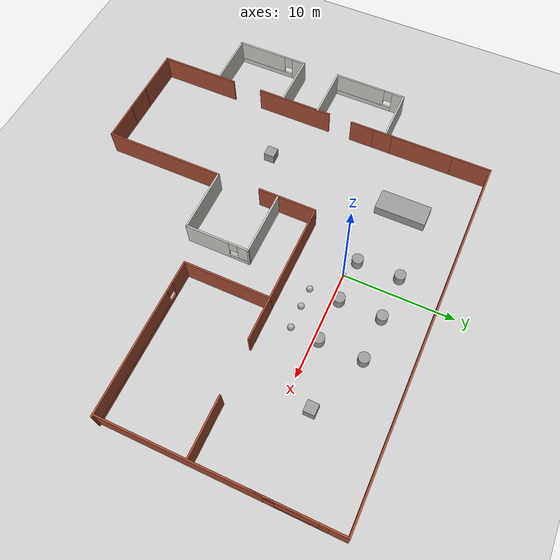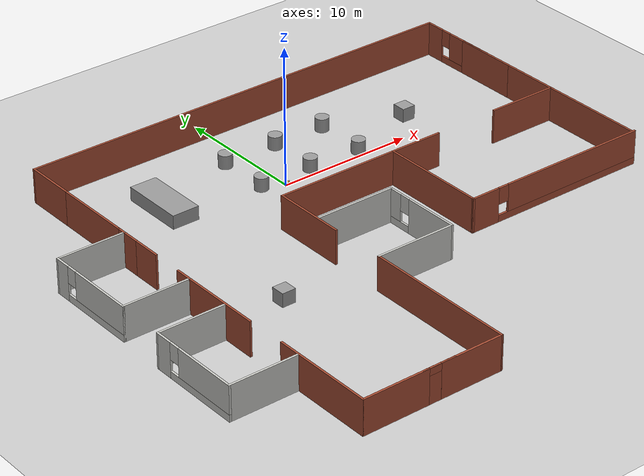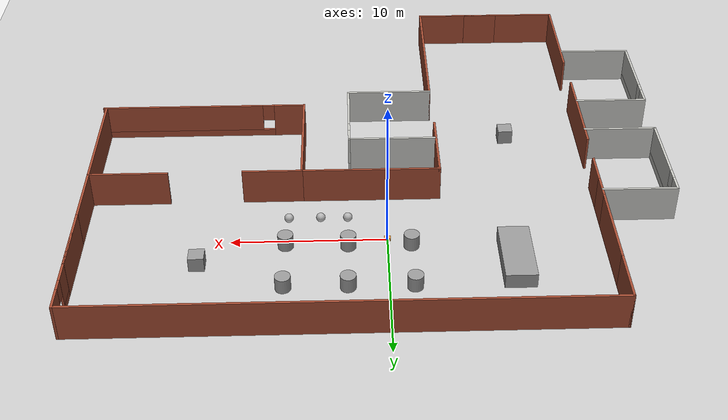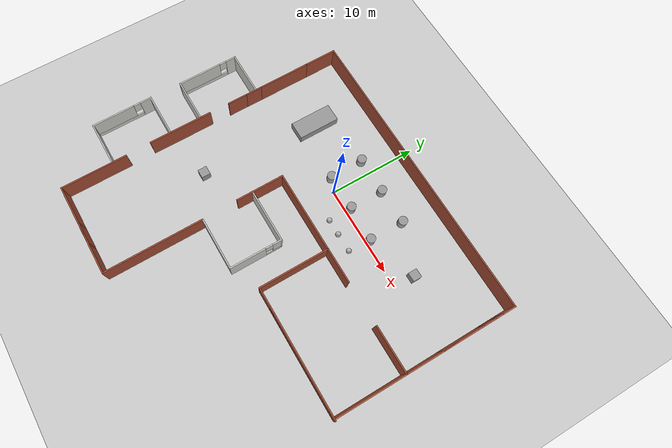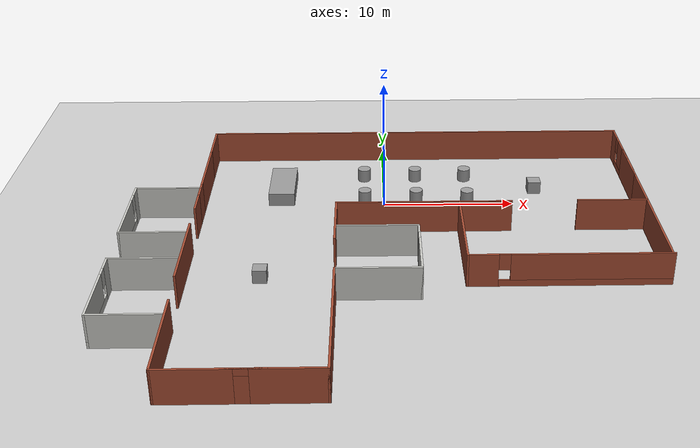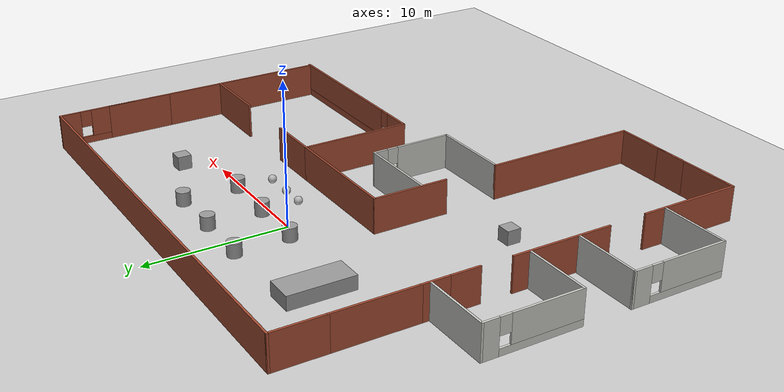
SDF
<sdf version="1.7">
 <world name="default">
  <light name="sun" type="directional">
   <pose>0 0 10 0 -0 0</pose>
   <diffuse>0.8 0.8 0.8 1</diffuse>
   <specular>0.2 0.2 0.2 1</specular>
   <attenuation>
    <range>1000</range>
    <constant>0.9</constant>
    <linear>0.01</linear>
    <quadratic>0.001</quadratic>
   </attenuation>
   <direction>-0.5 0.1 -0.9</direction>
   <spot><inner_angle>0</inner_angle><outer_angle>0</outer_angle><falloff>0</falloff></spot>
  </light>
  <model name="sphere1">
   <pose>6.33704 -2.07922 0.3 -6.2e-05 -8.2e-05 1.57285</pose>
   <link name="link">
    <inertial>
     <mass>1</mass>
     <inertia><ixx>1</ixx><ixy>0</ixy><ixz>0</ixz><iyy>1</iyy><iyz>0</iyz><izz>1</izz></inertia>
    </inertial>
    <collision name="collision"><geometry><sphere><radius>0.3</radius></sphere></geometry></collision>
    <visual name="visual"><geometry><sphere><radius>0.3</radius></sphere></geometry></visual>
   </link>
   <plugin name="move" filename="libgazebo_ros_planar_move.so">
    <ros><namespace>/sphere1</namespace></ros>
   </plugin>
  </model>
  <model name="sphere2">
   <pose>4.26786 -2.09169 0.3 0 -0 1.57935</pose>
   <link name="link">
    <inertial>
     <mass>1</mass>
     <inertia><ixx>1</ixx><ixy>0</ixy><ixz>0</ixz><iyy>1</iyy><iyz>0</iyz><izz>1</izz></inertia>
    </inertial>
    <collision name="collision"><geometry><sphere><radius>0.3</radius></sphere></geometry></collision>
    <visual name="visual"><geometry><sphere><radius>0.3</radius></sphere></geometry></visual>
   </link>
   <plugin name="move" filename="libgazebo_ros_planar_move.so">
    <ros><namespace>/sphere2</namespace></ros>
   </plugin>
  </model>
  <model name="sphere3">
   <pose>2.5092 -2.07272 0.3 -0.002357 -0.003179 1.56544</pose>
   <link name="link">
    <inertial>
     <mass>1</mass>
     <inertia><ixx>1</ixx><ixy>0</ixy><ixz>0</ixz><iyy>1</iyy><iyz>0</iyz><izz>1</izz></inertia>
    </inertial>
    <collision name="collision"><geometry><sphere><radius>0.3</radius></sphere></geometry></collision>
    <visual name="visual"><geometry><sphere><radius>0.3</radius></sphere></geometry></visual>
   </link>
   <plugin name="move" filename="libgazebo_ros_planar_move.so">
    <ros><namespace>/sphere3</namespace></ros>
   </plugin>
  </model>
  <model name="ground_plane">
   <static>1</static>
   <link name="link">
    <collision name="collision">
     <geometry><plane><normal>0 0 1</normal><size>100 100</size></plane></geometry>
     <surface>
      <contact><collide_bitmask>65535</collide_bitmask></contact>
      <friction><ode><mu>100</mu><mu2>50</mu2></ode></friction>
     </surface>
    </collision>
    <visual name="visual">
     <cast_shadows>0</cast_shadows>
     <geometry><plane><normal>0 0 1</normal><size>100 100</size></plane></geometry>
     <material>
      <script><uri>file://media/materials/scripts/gazebo.material</uri><name>Gazebo/Grey</name></script>
     </material>
    </visual>
   </link>
  </model>
  <gravity>0 0 -9.8</gravity>
  <magnetic_field>6e-06 2.3e-05 -4.2e-05</magnetic_field>
  <atmosphere type="adiabatic"/>
  <physics type="ode">
   <max_step_size>0.001</max_step_size>
   <real_time_factor>1</real_time_factor>
   <real_time_update_rate>1000</real_time_update_rate>
  </physics>
  <scene><ambient>0.4 0.4 0.4 1</ambient><background>0.7 0.7 0.7 1</background><shadows>1</shadows></scene>
  <audio><device>default</device></audio>
  <spherical_coordinates>
   <surface_model>EARTH_WGS84</surface_model>
   <latitude_deg>0</latitude_deg>
   <longitude_deg>0</longitude_deg>
   <elevation>0</elevation>
   <heading_deg>0</heading_deg>
  </spherical_coordinates>
  <model name="house">
   <pose>0.3748 -8.23016 0 0 -0 0</pose>
   <link name="Wall_11">
    <collision name="Wall_11_Collision">
     <geometry><box><size>5 0.15 2.5</size></box></geometry>
     <pose>0 0 1.25 0 -0 0</pose>
    </collision>
    <visual name="Wall_11_Visual">
     <pose>0 0 1.25 0 -0 0</pose>
     <geometry><box><size>5 0.15 2.5</size></box></geometry>
     <material>
      <script><uri>file://media/materials/scripts/gazebo.material</uri><name>Gazebo/CeilingTiled</name></script>
      <ambient>0.921569 0.807843 0.615686 1</ambient>
     </material>
     <meta><layer>0</layer></meta>
    </visual>
    <pose>-16.7413 6.52362 0 0 -0 3.14159</pose>
   </link>
   <link name="Wall_12">
    <pose>-19.1663 3.09862 0 0 -0 -1.5708</pose>
    <visual name="Wall_12_Visual_0">
     <pose>-2.89413 0 1.25 0 -0 0</pose>
     <geometry><box><size>1.21173 0.15 2.5</size></box></geometry>
     <material>
      <script><uri>file://media/materials/scripts/gazebo.material</uri><name>Gazebo/CeilingTiled</name></script>
      <ambient>0.921569 0.807843 0.615686 1</ambient>
     </material>
     <meta><layer>0</layer></meta>
    </visual>
    <collision name="Wall_12_Collision_0">
     <geometry><box><size>1.21173 0.15 2.5</size></box></geometry>
     <pose>-2.89413 0 1.25 0 -0 0</pose>
    </collision>
    <visual name="Wall_12_Visual_1">
     <pose>0.605867 0 0.25 0 -0 0</pose>
     <geometry><box><size>5.78827 0.15 0.5</size></box></geometry>
     <material>
      <script><uri>file://media/materials/scripts/gazebo.material</uri><name>Gazebo/CeilingTiled</name></script>
      <ambient>0.921569 0.807843 0.615686 1</ambient>
     </material>
     <meta><layer>0</layer></meta>
    </visual>
    <collision name="Wall_12_Collision_1">
     <geometry><box><size>5.78827 0.15 0.5</size></box></geometry>
     <pose>0.605867 0 0.25 0 -0 0</pose>
    </collision>
    <visual name="Wall_12_Visual_2">
     <pose>1.00587 0 1.5 0 -0 0</pose>
     <geometry><box><size>4.98827 0.15 2</size></box></geometry>
     <material>
      <script><uri>file://media/materials/scripts/gazebo.material</uri><name>Gazebo/CeilingTiled</name></script>
      <ambient>0.921569 0.807843 0.615686 1</ambient>
     </material>
     <meta><layer>0</layer></meta>
    </visual>
    <collision name="Wall_12_Collision_2">
     <geometry><box><size>4.98827 0.15 2</size></box></geometry>
     <pose>1.00587 0 1.5 0 -0 0</pose>
    </collision>
    <visual name="Wall_12_Visual_3">
     <pose>-1.88827 0 1.9 0 -0 0</pose>
     <geometry><box><size>0.8 0.15 1.2</size></box></geometry>
     <material>
      <script><uri>file://media/materials/scripts/gazebo.material</uri><name>Gazebo/CeilingTiled</name></script>
      <ambient>0.921569 0.807843 0.615686 1</ambient>
     </material>
     <meta><layer>0</layer></meta>
    </visual>
    <collision name="Wall_12_Collision_3">
     <geometry><box><size>0.8 0.15 1.2</size></box></geometry>
     <pose>-1.88827 0 1.9 0 -0 0</pose>
    </collision>
   </link>
   <link name="Wall_13">
    <collision name="Wall_13_Collision">
     <geometry><box><size>5 0.15 2.5</size></box></geometry>
     <pose>0 0 1.25 0 -0 0</pose>
    </collision>
    <visual name="Wall_13_Visual">
     <pose>0 0 1.25 0 -0 0</pose>
     <geometry><box><size>5 0.15 2.5</size></box></geometry>
     <material>
      <script><uri>file://media/materials/scripts/gazebo.material</uri><name>Gazebo/CeilingTiled</name></script>
      <ambient>0.921569 0.807843 0.615686 1</ambient>
     </material>
     <meta><layer>0</layer></meta>
    </visual>
    <pose>-16.7413 -0.326379 0 0 -0 0</pose>
   </link>
   <link name="Wall_15">
    <collision name="Wall_15_Collision">
     <geometry><box><size>2.25 0.15 2.5</size></box></geometry>
     <pose>0 0 1.25 0 -0 0</pose>
    </collision>
    <visual name="Wall_15_Visual">
     <pose>0 0 1.25 0 -0 0</pose>
     <geometry><box><size>2.25 0.15 2.5</size></box></geometry>
     <material>
      <script><uri>file://media/materials/scripts/gazebo.material</uri><name>Gazebo/Bricks</name></script>
      <ambient>1 1 1 1</ambient>
     </material>
     <meta><layer>0</layer></meta>
    </visual>
    <pose>-14.2878 4.2199 0 0 -0 -1.5708</pose>
   </link>
   <link name="Wall_17">
    <collision name="Wall_17_Collision">
     <geometry><box><size>7.25 0.15 2.5</size></box></geometry>
     <pose>0 0 1.25 0 -0 0</pose>
    </collision>
    <visual name="Wall_17_Visual">
     <pose>0 0 1.25 0 -0 0</pose>
     <geometry><box><size>7.25 0.15 2.5</size></box></geometry>
     <material>
      <script><uri>file://media/materials/scripts/gazebo.material</uri><name>Gazebo/Bricks</name></script>
      <ambient>1 1 1 1</ambient>
     </material>
     <meta><layer>0</layer></meta>
    </visual>
    <pose>-14.3152 -2.72703 0 0 -0 -1.5708</pose>
   </link>
   <link name="Wall_19">
    <collision name="Wall_19_Collision">
     <geometry><box><size>5 0.15 2.5</size></box></geometry>
     <pose>0 0 1.25 0 -0 0</pose>
    </collision>
    <visual name="Wall_19_Visual">
     <pose>0 0 1.25 0 -0 0</pose>
     <geometry><box><size>5 0.15 2.5</size></box></geometry>
     <material>
      <script><uri>file://media/materials/scripts/gazebo.material</uri><name>Gazebo/CeilingTiled</name></script>
      <ambient>0.921569 0.807843 0.615686 1</ambient>
     </material>
     <meta><layer>0</layer></meta>
    </visual>
    <pose>-16.7931 -3.92962 0 0 -0 3.14159</pose>
   </link>
   <link name="Wall_21">
    <pose>-19.2181 -7.35462 0 0 -0 -1.5708</pose>
    <visual name="Wall_21_Visual_0">
     <pose>-2.82936 0 1.25 0 -0 0</pose>
     <geometry><box><size>1.34129 0.15 2.5</size></box></geometry>
     <material>
      <script><uri>file://media/materials/scripts/gazebo.material</uri><name>Gazebo/CeilingTiled</name></script>
      <ambient>0.921569 0.807843 0.615686 1</ambient>
     </material>
     <meta><layer>0</layer></meta>
    </visual>
    <collision name="Wall_21_Collision_0">
     <geometry><box><size>1.34129 0.15 2.5</size></box></geometry>
     <pose>-2.82936 0 1.25 0 -0 0</pose>
    </collision>
    <visual name="Wall_21_Visual_1">
     <pose>0.670644 0 0.25 0 -0 0</pose>
     <geometry><box><size>5.65871 0.15 0.5</size></box></geometry>
     <material>
      <script><uri>file://media/materials/scripts/gazebo.material</uri><name>Gazebo/CeilingTiled</name></script>
      <ambient>0.921569 0.807843 0.615686 1</ambient>
     </material>
     <meta><layer>0</layer></meta>
    </visual>
    <collision name="Wall_21_Collision_1">
     <geometry><box><size>5.65871 0.15 0.5</size></box></geometry>
     <pose>0.670644 0 0.25 0 -0 0</pose>
    </collision>
    <visual name="Wall_21_Visual_2">
     <pose>1.07064 0 1.5 0 -0 0</pose>
     <geometry><box><size>4.85871 0.15 2</size></box></geometry>
     <material>
      <script><uri>file://media/materials/scripts/gazebo.material</uri><name>Gazebo/CeilingTiled</name></script>
      <ambient>0.921569 0.807843 0.615686 1</ambient>
     </material>
     <meta><layer>0</layer></meta>
    </visual>
    <collision name="Wall_21_Collision_2">
     <geometry><box><size>4.85871 0.15 2</size></box></geometry>
     <pose>1.07064 0 1.5 0 -0 0</pose>
    </collision>
    <visual name="Wall_21_Visual_3">
     <pose>-1.75871 0 1.9 0 -0 0</pose>
     <geometry><box><size>0.8 0.15 1.2</size></box></geometry>
     <material>
      <script><uri>file://media/materials/scripts/gazebo.material</uri><name>Gazebo/CeilingTiled</name></script>
      <ambient>0.921569 0.807843 0.615686 1</ambient>
     </material>
     <meta><layer>0</layer></meta>
    </visual>
    <collision name="Wall_21_Collision_3">
     <geometry><box><size>0.8 0.15 1.2</size></box></geometry>
     <pose>-1.75871 0 1.9 0 -0 0</pose>
    </collision>
   </link>
   <link name="Wall_22">
    <collision name="Wall_22_Collision">
     <geometry><box><size>5 0.15 2.5</size></box></geometry>
     <pose>0 0 1.25 0 -0 0</pose>
    </collision>
    <visual name="Wall_22_Visual">
     <pose>0 0 1.25 0 -0 0</pose>
     <geometry><box><size>5 0.15 2.5</size></box></geometry>
     <material>
      <script><uri>file://media/materials/scripts/gazebo.material</uri><name>Gazebo/CeilingTiled</name></script>
      <ambient>0.921569 0.807843 0.615686 1</ambient>
     </material>
     <meta><layer>0</layer></meta>
    </visual>
    <pose>-16.7931 -10.7796 0 0 -0 0</pose>
   </link>
   <link name="Wall_24">
    <collision name="Wall_24_Collision">
     <geometry><box><size>7.5 0.15 2.5</size></box></geometry>
     <pose>0 0 1.25 0 -0 0</pose>
    </collision>
    <visual name="Wall_24_Visual">
     <pose>0 0 1.25 0 -0 0</pose>
     <geometry><box><size>7.5 0.15 2.5</size></box></geometry>
     <material>
      <script><uri>file://media/materials/scripts/gazebo.material</uri><name>Gazebo/Bricks</name></script>
      <ambient>1 1 1 1</ambient>
     </material>
     <meta><layer>0</layer></meta>
    </visual>
    <pose>-14.2382 -12.8949 0 0 -0 -1.5708</pose>
   </link>
   <link name="Wall_25">
    <pose>-9.06316 -16.5699 0 0 -0 0</pose>
    <visual name="Wall_25_Visual_0">
     <pose>-2.80375 0 1.25 0 -0 0</pose>
     <geometry><box><size>4.89251 0.15 2.5</size></box></geometry>
     <material>
      <script><uri>file://media/materials/scripts/gazebo.material</uri><name>Gazebo/Bricks</name></script>
      <ambient>1 1 1 1</ambient>
     </material>
     <meta><layer>0</layer></meta>
    </visual>
    <collision name="Wall_25_Collision_0">
     <geometry><box><size>4.89251 0.15 2.5</size></box></geometry>
     <pose>-2.80375 0 1.25 0 -0 0</pose>
    </collision>
    <visual name="Wall_25_Visual_1">
     <pose>2.89625 0 1.25 0 -0 0</pose>
     <geometry><box><size>4.70749 0.15 2.5</size></box></geometry>
     <material>
      <script><uri>file://media/materials/scripts/gazebo.material</uri><name>Gazebo/Bricks</name></script>
      <ambient>1 1 1 1</ambient>
     </material>
     <meta><layer>0</layer></meta>
    </visual>
    <collision name="Wall_25_Collision_1">
     <geometry><box><size>4.70749 0.15 2.5</size></box></geometry>
     <pose>2.89625 0 1.25 0 -0 0</pose>
    </collision>
    <visual name="Wall_25_Visual_2">
     <pose>0.092508 0 2.25 0 -0 0</pose>
     <geometry><box><size>0.9 0.15 0.5</size></box></geometry>
     <material>
      <script><uri>file://media/materials/scripts/gazebo.material</uri><name>Gazebo/Bricks</name></script>
      <ambient>1 1 1 1</ambient>
     </material>
     <meta><layer>0</layer></meta>
    </visual>
    <collision name="Wall_25_Collision_2">
     <geometry><box><size>0.9 0.15 0.5</size></box></geometry>
     <pose>0.092508 0 2.25 0 -0 0</pose>
    </collision>
   </link>
   <link name="Wall_26">
    <collision name="Wall_26_Collision">
     <geometry><box><size>11.25 0.15 2.5</size></box></geometry>
     <pose>0 0 1.25 0 -0 0</pose>
    </collision>
    <visual name="Wall_26_Visual">
     <pose>0 0 1.25 0 -0 0</pose>
     <geometry><box><size>11.25 0.15 2.5</size></box></geometry>
     <material>
      <script><uri>file://media/materials/scripts/gazebo.material</uri><name>Gazebo/Bricks</name></script>
      <ambient>1 1 1 1</ambient>
     </material>
     <meta><layer>0</layer></meta>
    </visual>
    <pose>-3.88816 -11.0199 0 0 -0 1.5708</pose>
   </link>
   <link name="Wall_27">
    <collision name="Wall_27_Collision">
     <geometry><box><size>6 0.15 2.5</size></box></geometry>
     <pose>0 0 1.25 0 -0 0</pose>
    </collision>
    <visual name="Wall_27_Visual">
     <pose>0 0 1.25 0 -0 0</pose>
     <geometry><box><size>6 0.15 2.5</size></box></geometry>
     <material>
      <script><uri>file://media/materials/scripts/gazebo.material</uri><name>Gazebo/CeilingTiled</name></script>
      <ambient>0.921569 0.807843 0.615686 1</ambient>
     </material>
     <meta><layer>0</layer></meta>
    </visual>
    <pose>-0.963163 -5.4699 0 0 -0 0</pose>
   </link>
   <link name="Wall_28">
    <pose>1.96184 -2.5449 0 0 -0 1.5708</pose>
    <visual name="Wall_28_Visual_0">
     <pose>-0.948972 0 1.25 0 -0 0</pose>
     <geometry><box><size>4.10206 0.15 2.5</size></box></geometry>
     <material>
      <script><uri>file://media/materials/scripts/gazebo.material</uri><name>Gazebo/CeilingTiled</name></script>
      <ambient>0.921569 0.807843 0.615686 1</ambient>
     </material>
     <meta><layer>0</layer></meta>
    </visual>
    <collision name="Wall_28_Collision_0">
     <geometry><box><size>4.10206 0.15 2.5</size></box></geometry>
     <pose>-0.948972 0 1.25 0 -0 0</pose>
    </collision>
    <visual name="Wall_28_Visual_1">
     <pose>2.05103 0 0.25 0 -0 0</pose>
     <geometry><box><size>1.89794 0.15 0.5</size></box></geometry>
     <material>
      <script><uri>file://media/materials/scripts/gazebo.material</uri><name>Gazebo/CeilingTiled</name></script>
      <ambient>0.921569 0.807843 0.615686 1</ambient>
     </material>
     <meta><layer>0</layer></meta>
    </visual>
    <collision name="Wall_28_Collision_1">
     <geometry><box><size>1.89794 0.15 0.5</size></box></geometry>
     <pose>2.05103 0 0.25 0 -0 0</pose>
    </collision>
    <visual name="Wall_28_Visual_2">
     <pose>2.45103 0 1.5 0 -0 0</pose>
     <geometry><box><size>1.09794 0.15 2</size></box></geometry>
     <material>
      <script><uri>file://media/materials/scripts/gazebo.material</uri><name>Gazebo/CeilingTiled</name></script>
      <ambient>0.921569 0.807843 0.615686 1</ambient>
     </material>
     <meta><layer>0</layer></meta>
    </visual>
    <collision name="Wall_28_Collision_2">
     <geometry><box><size>1.09794 0.15 2</size></box></geometry>
     <pose>2.45103 0 1.5 0 -0 0</pose>
    </collision>
    <visual name="Wall_28_Visual_3">
     <pose>1.50206 0 1.9 0 -0 0</pose>
     <geometry><box><size>0.8 0.15 1.2</size></box></geometry>
     <material>
      <script><uri>file://media/materials/scripts/gazebo.material</uri><name>Gazebo/CeilingTiled</name></script>
      <ambient>0.921569 0.807843 0.615686 1</ambient>
     </material>
     <meta><layer>0</layer></meta>
    </visual>
    <collision name="Wall_28_Collision_3">
     <geometry><box><size>0.8 0.15 1.2</size></box></geometry>
     <pose>1.50206 0 1.9 0 -0 0</pose>
    </collision>
   </link>
   <link name="Wall_29">
    <collision name="Wall_29_Collision">
     <geometry><box><size>6 0.15 2.5</size></box></geometry>
     <pose>0 0 1.25 0 -0 0</pose>
    </collision>
    <visual name="Wall_29_Visual">
     <pose>0 0 1.25 0 -0 0</pose>
     <geometry><box><size>6 0.15 2.5</size></box></geometry>
     <material>
      <script><uri>file://media/materials/scripts/gazebo.material</uri><name>Gazebo/CeilingTiled</name></script>
      <ambient>0.921569 0.807843 0.615686 1</ambient>
     </material>
     <meta><layer>0</layer></meta>
    </visual>
    <pose>-0.963163 0.380099 0 0 -0 3.14159</pose>
   </link>
   <link name="Wall_31">
    <collision name="Wall_31_Collision">
     <geometry><box><size>5.5 0.15 2.5</size></box></geometry>
     <pose>0 0 1.25 0 -0 0</pose>
    </collision>
    <visual name="Wall_31_Visual">
     <pose>0 0 1.25 0 -0 0</pose>
     <geometry><box><size>5.5 0.15 2.5</size></box></geometry>
     <material>
      <script><uri>file://media/materials/scripts/gazebo.material</uri><name>Gazebo/Bricks</name></script>
      <ambient>1 1 1 1</ambient>
     </material>
     <meta><layer>0</layer></meta>
    </visual>
    <pose>-3.98189 1.25425 0 0 -0 1.5708</pose>
   </link>
   <link name="Wall_45">
    <collision name="Wall_45_Collision">
     <geometry><box><size>3.75 0.15 2.5</size></box></geometry>
     <pose>0 0 1.25 0 -0 0</pose>
    </collision>
    <visual name="Wall_45_Visual">
     <pose>0 0 1.25 0 -0 0</pose>
     <geometry><box><size>3.75 0.15 2.5</size></box></geometry>
     <material>
      <script><uri>file://media/materials/scripts/gazebo.material</uri><name>Gazebo/Bricks</name></script>
      <ambient>1 1 1 1</ambient>
     </material>
     <meta><layer>0</layer></meta>
    </visual>
    <pose>-14.2878 14.7699 0 0 -0 1.5708</pose>
   </link>
   <link name="Wall_54">
    <collision name="Wall_54_Collision">
     <geometry><box><size>33.5 0.15 2.5</size></box></geometry>
     <pose>0 0 1.25 0 -0 0</pose>
    </collision>
    <visual name="Wall_54_Visual">
     <pose>0 0 1.25 0 -0 0</pose>
     <geometry><box><size>33.5 0.15 2.5</size></box></geometry>
     <material>
      <script><uri>file://media/materials/scripts/gazebo.material</uri><name>Gazebo/Bricks</name></script>
      <ambient>1 1 1 1</ambient>
     </material>
     <meta><layer>0</layer></meta>
    </visual>
    <pose>2.38719 16.5699 0 0 -0 0</pose>
   </link>
   <link name="Wall_55">
    <pose>19.0622 6.3949 0 0 -0 -1.5708</pose>
    <visual name="Wall_55_Visual_0">
     <pose>-9.4817 0 1.25 0 -0 0</pose>
     <geometry><box><size>1.53661 0.15 2.5</size></box></geometry>
     <material>
      <script><uri>file://media/materials/scripts/gazebo.material</uri><name>Gazebo/Bricks</name></script>
      <ambient>1 1 1 1</ambient>
     </material>
     <meta><layer>0</layer></meta>
    </visual>
    <collision name="Wall_55_Collision_0">
     <geometry><box><size>1.53661 0.15 2.5</size></box></geometry>
     <pose>-9.4817 0 1.25 0 -0 0</pose>
    </collision>
    <visual name="Wall_55_Visual_1">
     <pose>3.34307 0 1.25 0 -0 0</pose>
     <geometry><box><size>13.8139 0.15 2.5</size></box></geometry>
     <material>
      <script><uri>file://media/materials/scripts/gazebo.material</uri><name>Gazebo/Bricks</name></script>
      <ambient>1 1 1 1</ambient>
     </material>
     <meta><layer>0</layer></meta>
    </visual>
    <collision name="Wall_55_Collision_1">
     <geometry><box><size>13.8139 0.15 2.5</size></box></geometry>
     <pose>3.34307 0 1.25 0 -0 0</pose>
    </collision>
    <visual name="Wall_55_Visual_2">
     <pose>-6.58863 0 0.25 0 -0 0</pose>
     <geometry><box><size>4.24953 0.15 0.5</size></box></geometry>
     <material>
      <script><uri>file://media/materials/scripts/gazebo.material</uri><name>Gazebo/Bricks</name></script>
      <ambient>1 1 1 1</ambient>
     </material>
     <meta><layer>0</layer></meta>
    </visual>
    <collision name="Wall_55_Collision_2">
     <geometry><box><size>4.24953 0.15 0.5</size></box></geometry>
     <pose>-6.58863 0 0.25 0 -0 0</pose>
    </collision>
    <visual name="Wall_55_Visual_3">
     <pose>-6.18863 0 1.5 0 -0 0</pose>
     <geometry><box><size>3.44953 0.15 2</size></box></geometry>
     <material>
      <script><uri>file://media/materials/scripts/gazebo.material</uri><name>Gazebo/Bricks</name></script>
      <ambient>1 1 1 1</ambient>
     </material>
     <meta><layer>0</layer></meta>
    </visual>
    <collision name="Wall_55_Collision_3">
     <geometry><box><size>3.44953 0.15 2</size></box></geometry>
     <pose>-6.18863 0 1.5 0 -0 0</pose>
    </collision>
    <visual name="Wall_55_Visual_4">
     <pose>-8.31339 0 1.9 0 -0 0</pose>
     <geometry><box><size>0.8 0.15 1.2</size></box></geometry>
     <material>
      <script><uri>file://media/materials/scripts/gazebo.material</uri><name>Gazebo/Bricks</name></script>
      <ambient>1 1 1 1</ambient>
     </material>
     <meta><layer>0</layer></meta>
    </visual>
    <collision name="Wall_55_Collision_4">
     <geometry><box><size>0.8 0.15 1.2</size></box></geometry>
     <pose>-8.31339 0 1.9 0 -0 0</pose>
    </collision>
    <visual name="Wall_55_Visual_5">
     <pose>-4.01386 0 2.25 0 -0 0</pose>
     <geometry><box><size>0.9 0.15 0.5</size></box></geometry>
     <material>
      <script><uri>file://media/materials/scripts/gazebo.material</uri><name>Gazebo/Bricks</name></script>
      <ambient>1 1 1 1</ambient>
     </material>
     <meta><layer>0</layer></meta>
    </visual>
    <collision name="Wall_55_Collision_5">
     <geometry><box><size>0.9 0.15 0.5</size></box></geometry>
     <pose>-4.01386 0 2.25 0 -0 0</pose>
    </collision>
   </link>
   <link name="Wall_57">
    <collision name="Wall_57_Collision">
     <geometry><box><size>9.25 0.15 2.5</size></box></geometry>
     <pose>0 0 1.25 0 -0 0</pose>
    </collision>
    <visual name="Wall_57_Visual">
     <pose>0 0 1.25 0 -0 0</pose>
     <geometry><box><size>9.25 0.15 2.5</size></box></geometry>
     <material>
      <script><uri>file://media/materials/scripts/gazebo.material</uri><name>Gazebo/Bricks</name></script>
      <ambient>1 1 1 1</ambient>
     </material>
     <meta><layer>0</layer></meta>
    </visual>
    <pose>0.56811 3.92925 0 0 -0 0</pose>
   </link>
   <link name="Wall_60">
    <collision name="Wall_60_Collision">
     <geometry><box><size>8 0.15 2.5</size></box></geometry>
     <pose>0 0 1.25 0 -0 0</pose>
    </collision>
    <visual name="Wall_60_Visual">
     <pose>0 0 1.25 0 -0 0</pose>
     <geometry><box><size>8 0.15 2.5</size></box></geometry>
     <material>
      <script><uri>file://media/materials/scripts/gazebo.material</uri><name>Gazebo/Bricks</name></script>
      <ambient>1 1 1 1</ambient>
     </material>
     <meta><layer>0</layer></meta>
    </visual>
    <pose>5.11811 0.004247 0 0 -0 -1.5708</pose>
   </link>
   <link name="Wall_61">
    <pose>12.1681 -3.92075 0 0 -0 0</pose>
    <visual name="Wall_61_Visual_0">
     <pose>-6.02562 0 1.25 0 -0 0</pose>
     <geometry><box><size>2.19876 0.15 2.5</size></box></geometry>
     <material>
      <script><uri>file://media/materials/scripts/gazebo.material</uri><name>Gazebo/Bricks</name></script>
      <ambient>1 1 1 1</ambient>
     </material>
     <meta><layer>0</layer></meta>
    </visual>
    <collision name="Wall_61_Collision_0">
     <geometry><box><size>2.19876 0.15 2.5</size></box></geometry>
     <pose>-6.02562 0 1.25 0 -0 0</pose>
    </collision>
    <visual name="Wall_61_Visual_1">
     <pose>1.09938 0 0.25 0 -0 0</pose>
     <geometry><box><size>12.0512 0.15 0.5</size></box></geometry>
     <material>
      <script><uri>file://media/materials/scripts/gazebo.material</uri><name>Gazebo/Bricks</name></script>
      <ambient>1 1 1 1</ambient>
     </material>
     <meta><layer>0</layer></meta>
    </visual>
    <collision name="Wall_61_Collision_1">
     <geometry><box><size>12.0512 0.15 0.5</size></box></geometry>
     <pose>1.09938 0 0.25 0 -0 0</pose>
    </collision>
    <visual name="Wall_61_Visual_2">
     <pose>1.49938 0 1.5 0 -0 0</pose>
     <geometry><box><size>11.2512 0.15 2</size></box></geometry>
     <material>
      <script><uri>file://media/materials/scripts/gazebo.material</uri><name>Gazebo/Bricks</name></script>
      <ambient>1 1 1 1</ambient>
     </material>
     <meta><layer>0</layer></meta>
    </visual>
    <collision name="Wall_61_Collision_2">
     <geometry><box><size>11.2512 0.15 2</size></box></geometry>
     <pose>1.49938 0 1.5 0 -0 0</pose>
    </collision>
    <visual name="Wall_61_Visual_3">
     <pose>-4.52624 0 1.9 0 -0 0</pose>
     <geometry><box><size>0.8 0.15 1.2</size></box></geometry>
     <material>
      <script><uri>file://media/materials/scripts/gazebo.material</uri><name>Gazebo/Bricks</name></script>
      <ambient>1 1 1 1</ambient>
     </material>
     <meta><layer>0</layer></meta>
    </visual>
    <collision name="Wall_61_Collision_3">
     <geometry><box><size>0.8 0.15 1.2</size></box></geometry>
     <pose>-4.52624 0 1.9 0 -0 0</pose>
    </collision>
   </link>
   <link name="Wall_63">
    <collision name="Wall_63_Collision">
     <geometry><box><size>4 0.15 2.5</size></box></geometry>
     <pose>0 0 1.25 0 -0 0</pose>
    </collision>
    <visual name="Wall_63_Visual">
     <pose>0 0 1.25 0 -0 0</pose>
     <geometry><box><size>4 0.15 2.5</size></box></geometry>
     <material>
      <script><uri>file://media/materials/scripts/gazebo.material</uri><name>Gazebo/Bricks</name></script>
      <ambient>1 1 1 1</ambient>
     </material>
     <meta><layer>0</layer></meta>
    </visual>
    <pose>7.04311 3.92925 0 0 -0 0</pose>
   </link>
   <link name="Wall_65">
    <collision name="Wall_65_Collision">
     <geometry><box><size>5.25 0.15 2.5</size></box></geometry>
     <pose>0 0 1.25 0 -0 0</pose>
    </collision>
    <visual name="Wall_65_Visual">
     <pose>0 0 1.25 0 -0 0</pose>
     <geometry><box><size>5.25 0.15 2.5</size></box></geometry>
     <material>
      <script><uri>file://media/materials/scripts/gazebo.material</uri><name>Gazebo/Bricks</name></script>
      <ambient>1 1 1 1</ambient>
     </material>
     <meta><layer>0</layer></meta>
    </visual>
    <pose>16.4878 3.97444 0 0 -0 0</pose>
   </link>
   <link name="Wall_8">
    <collision name="Wall_8_Collision">
     <geometry><box><size>6 0.15 2.5</size></box></geometry>
     <pose>0 0 1.25 0 -0 0</pose>
    </collision>
    <visual name="Wall_8_Visual">
     <pose>0 0 1.25 0 -0 0</pose>
     <geometry><box><size>6 0.15 2.5</size></box></geometry>
     <material>
      <script><uri>file://media/materials/scripts/gazebo.material</uri><name>Gazebo/Bricks</name></script>
      <ambient>1 1 1 1</ambient>
     </material>
     <meta><layer>0</layer></meta>
    </visual>
    <pose>-14.2878 10.0449 0 0 -0 -1.5708</pose>
   </link>
   <link name="Wall_9">
    <collision name="Wall_9_Collision">
     <geometry><box><size>2 0.15 2.5</size></box></geometry>
     <pose>0 0 1.25 0 -0 0</pose>
    </collision>
    <visual name="Wall_9_Visual">
     <pose>0 0 1.25 0 -0 0</pose>
     <geometry><box><size>2 0.15 2.5</size></box></geometry>
     <material>
      <script><uri>file://media/materials/scripts/gazebo.material</uri><name>Gazebo/Bricks</name></script>
      <ambient>1 1 1 1</ambient>
     </material>
     <meta><layer>0</layer></meta>
    </visual>
    <pose>-14.2878 6.1949 0 0 -0 -1.5708</pose>
   </link>
   <static>1</static>
  </model>
  <model name="house_0">
   <pose>4.9984 -10.0878 0 0 -0 0</pose>
   <link name="Wall_71">
    <collision name="Wall_71_Collision">
     <geometry><box><size>4.75 0.15 2.5</size></box></geometry>
     <pose>0 0 1.25 0 -0 0</pose>
    </collision>
    <visual name="Wall_71_Visual">
     <pose>0 0 1.25 0 -0 0</pose>
     <geometry><box><size>4.75 0.15 2.5</size></box></geometry>
     <material>
      <script><uri>file://media/materials/scripts/gazebo.material</uri><name>Gazebo/Bricks</name></script>
      <ambient>1 1 1 1</ambient>
     </material>
     <meta><layer>0</layer></meta>
    </visual>
    <pose>14.4369 12.4091 0 0 -0 -1.5708</pose>
   </link>
   <link name="Wall_74">
    <collision name="Wall_74_Collision">
     <geometry><box><size>2.5 0.15 2.5</size></box></geometry>
     <pose>0 0 1.25 0 -0 0</pose>
    </collision>
    <visual name="Wall_74_Visual">
     <pose>0 0 1.25 0 -0 0</pose>
     <geometry><box><size>2.5 0.15 2.5</size></box></geometry>
     <material>
      <script><uri>file://media/materials/scripts/gazebo.material</uri><name>Gazebo/Bricks</name></script>
      <ambient>1 1 1 1</ambient>
     </material>
     <meta><layer>0</layer></meta>
    </visual>
    <pose>-13.2619 -14.7091 0 0 -0 0</pose>
   </link>
   <static>1</static>
  </model>
  <model name="unit_box_clone_0">
   <pose>11.9327 2.19685 0.499995 1e-05 -0 0</pose>
   <link name="link">
    <inertial>
     <mass>1</mass>
     <inertia>
      <ixx>0.166667</ixx>
      <ixy>0</ixy>
      <ixz>0</ixz>
      <iyy>0.166667</iyy>
      <iyz>0</iyz>
      <izz>0.166667</izz>
     </inertia>
    </inertial>
    <collision name="collision"><geometry><box><size>0.999997 1 1</size></box></geometry></collision>
    <visual name="visual">
     <geometry><box><size>0.999997 1 1</size></box></geometry>
     <material>
      <script><name>Gazebo/Grey</name><uri>file://media/materials/scripts/gazebo.material</uri></script>
     </material>
    </visual>
   </link>
  </model>
  <model name="unit_cylinder">
   <pose>6.52313 4.40664 0.499998 3e-06 -3e-06 0</pose>
   <link name="link">
    <inertial>
     <mass>1</mass>
     <inertia><ixx>0.145833</ixx><ixy>0</ixy><ixz>0</ixz><iyy>0.145833</iyy><iyz>0</iyz><izz>0.125</izz></inertia>
    </inertial>
    <collision name="collision">
     <geometry><cylinder><radius>0.5</radius><length>1</length></cylinder></geometry>
    </collision>
    <visual name="visual">
     <geometry><cylinder><radius>0.5</radius><length>1</length></cylinder></geometry>
     <material>
      <script><name>Gazebo/Grey</name><uri>file://media/materials/scripts/gazebo.material</uri></script>
     </material>
    </visual>
   </link>
  </model>
  <model name="unit_cylinder_clone_0">
   <pose>2.53887 4.43589 0.5 0 -0 0</pose>
   <link name="link">
    <inertial>
     <mass>1</mass>
     <inertia><ixx>0.145833</ixx><ixy>0</ixy><ixz>0</ixz><iyy>0.145833</iyy><iyz>0</iyz><izz>0.125</izz></inertia>
    </inertial>
    <collision name="collision">
     <geometry><cylinder><radius>0.5</radius><length>1</length></cylinder></geometry>
    </collision>
    <visual name="visual">
     <geometry><cylinder><radius>0.5</radius><length>1</length></cylinder></geometry>
     <material>
      <script><name>Gazebo/Grey</name><uri>file://media/materials/scripts/gazebo.material</uri></script>
     </material>
    </visual>
   </link>
  </model>
  <model name="unit_cylinder_clone_1">
   <pose>6.47863 0.46553 0.499998 3e-06 -3e-06 0</pose>
   <link name="link">
    <inertial>
     <mass>1</mass>
     <inertia><ixx>0.145833</ixx><ixy>0</ixy><ixz>0</ixz><iyy>0.145833</iyy><iyz>0</iyz><izz>0.125</izz></inertia>
    </inertial>
    <collision name="collision">
     <geometry><cylinder><radius>0.5</radius><length>1</length></cylinder></geometry>
    </collision>
    <visual name="visual">
     <geometry><cylinder><radius>0.5</radius><length>1</length></cylinder></geometry>
     <material>
      <script><name>Gazebo/Grey</name><uri>file://media/materials/scripts/gazebo.material</uri></script>
     </material>
    </visual>
   </link>
  </model>
  <model name="unit_cylinder_clone_3">
   <pose>2.4967 0.602643 0.5 0 -0 0</pose>
   <link name="link">
    <inertial>
     <mass>1</mass>
     <inertia><ixx>0.145833</ixx><ixy>0</ixy><ixz>0</ixz><iyy>0.145833</iyy><iyz>0</iyz><izz>0.125</izz></inertia>
    </inertial>
    <collision name="collision">
     <geometry><cylinder><radius>0.5</radius><length>1</length></cylinder></geometry>
    </collision>
    <visual name="visual">
     <geometry><cylinder><radius>0.5</radius><length>1</length></cylinder></geometry>
     <material>
      <script><name>Gazebo/Grey</name><uri>file://media/materials/scripts/gazebo.material</uri></script>
     </material>
    </visual>
   </link>
  </model>
  <model name="unit_cylinder_clone_4">
   <pose>-1.52018 0.63993 0.499995 0 -0 0</pose>
   <link name="link">
    <inertial>
     <mass>1</mass>
     <inertia><ixx>0.145833</ixx><ixy>0</ixy><ixz>0</ixz><iyy>0.145833</iyy><iyz>0</iyz><izz>0.125</izz></inertia>
    </inertial>
    <collision name="collision">
     <geometry><cylinder><radius>0.5</radius><length>1</length></cylinder></geometry>
    </collision>
    <visual name="visual">
     <geometry><cylinder><radius>0.5</radius><length>1</length></cylinder></geometry>
     <material>
      <script><name>Gazebo/Grey</name><uri>file://media/materials/scripts/gazebo.material</uri></script>
     </material>
    </visual>
   </link>
  </model>
  <model name="unit_cylinder_clone_5">
   <pose>-1.56789 4.4928 0.499998 3e-06 -3e-06 0</pose>
   <link name="link">
    <inertial>
     <mass>1</mass>
     <inertia><ixx>0.145833</ixx><ixy>0</ixy><ixz>0</ixz><iyy>0.145833</iyy><iyz>0</iyz><izz>0.125</izz></inertia>
    </inertial>
    <collision name="collision">
     <geometry><cylinder><radius>0.5</radius><length>1</length></cylinder></geometry>
    </collision>
    <visual name="visual">
     <geometry><cylinder><radius>0.5</radius><length>1</length></cylinder></geometry>
     <material>
      <script><name>Gazebo/Grey</name><uri>file://media/materials/scripts/gazebo.material</uri></script>
     </material>
    </visual>
   </link>
  </model>
  <model name="unit_box_0">
   <pose>-8.75306 -11.0379 0.499995 1e-05 -0 0</pose>
   <link name="link">
    <inertial>
     <mass>1</mass>
     <inertia>
      <ixx>0.166667</ixx>
      <ixy>0</ixy>
      <ixz>0</ixz>
      <iyy>0.166667</iyy>
      <iyz>0</iyz>
      <izz>0.166667</izz>
     </inertia>
    </inertial>
    <collision name="collision"><geometry><box><size>0.999999 1 1</size></box></geometry></collision>
    <visual name="visual">
     <geometry><box><size>0.999999 1 1</size></box></geometry>
     <material>
      <script><name>Gazebo/Grey</name><uri>file://media/materials/scripts/gazebo.material</uri></script>
     </material>
    </visual>
   </link>
  </model>
  <model name="unit_box_clone_0_clone">
   <pose>-8.00836 2.4036 0.498413 0.000676 -0 0</pose>
   <link name="link">
    <inertial>
     <mass>1</mass>
     <inertia>
      <ixx>0.166667</ixx>
      <ixy>0</ixy>
      <ixz>0</ixz>
      <iyy>0.166667</iyy>
      <iyz>0</iyz>
      <izz>0.166667</izz>
     </inertia>
    </inertial>
    <collision name="collision"><geometry><box><size>2.00415 4.694 1</size></box></geometry></collision>
    <visual name="visual">
     <geometry><box><size>2.00415 4.694 1</size></box></geometry>
     <material>
      <script><name>Gazebo/Grey</name><uri>file://media/materials/scripts/gazebo.material</uri></script>
     </material>
    </visual>
   </link>
  </model>
  <model name="my_bot">
   <link name="base_link">
    <inertial>
     <pose>0.003214 0.002321 -0.0405 0 -0 0</pose>
     <mass>5.6</mass>
     <inertia>
      <ixx>0.0335696</ixx>
      <ixy>-0.00229821</ixy>
      <ixz>-0.001899</ixz>
      <iyy>0.133675</iyy>
      <iyz>-0.0013715</iyz>
      <izz>0.125297</izz>
     </inertia>
    </inertial>
    <collision name="base_link_fixed_joint_lump__chassis_collision">
     <geometry><box><size>0.4 0.3 0.1</size></box></geometry>
    </collision>
    <collision name="base_link_fixed_joint_lump__connect_cargo_collision_1">
     <pose>0 0 0.065 0 -0 0</pose>
     <geometry><box><size>0.3 0.2 0.03</size></box></geometry>
    </collision>
    <collision name="base_link_fixed_joint_lump__cargo_collision_2">
     <pose>0 0 0.13 0 -0 0</pose>
     <geometry><box><size>0.4 0.3 0.1</size></box></geometry>
    </collision>
    <collision name="base_link_fixed_joint_lump__connect_caster_wheel_front_collision_3">
     <pose>0.15 0 -0.05 0 -0 0</pose>
     <geometry><cylinder><length>0.052</length><radius>0.02</radius></cylinder></geometry>
    </collision>
    <collision name="base_link_fixed_joint_lump__caster_wheel_front_collision_4">
     <pose>0.15 0 -0.07295 0 -0 0</pose>
     <geometry><sphere><radius>0.01</radius></sphere></geometry>
     <surface><friction><ode><mu>0.001</mu><mu2>0.001</mu2></ode></friction></surface>
    </collision>
    <collision name="base_link_fixed_joint_lump__connect_caster_wheel_rear_collision_5">
     <pose>-0.15 0 -0.05 0 -0 0</pose>
     <geometry><cylinder><length>0.052</length><radius>0.02</radius></cylinder></geometry>
    </collision>
    <collision name="base_link_fixed_joint_lump__caster_wheel_rear_collision_6">
     <pose>-0.15 0 -0.07295 0 -0 0</pose>
     <geometry><sphere><radius>0.01</radius></sphere></geometry>
     <surface><friction><ode><mu>0.001</mu><mu2>0.001</mu2></ode></friction></surface>
    </collision>
    <collision name="base_link_fixed_joint_lump__laser_frame_front_collision_7">
     <pose>0.18 0.13 0.065 0 -0 0</pose>
     <geometry><cylinder><length>0.04</length><radius>0.03</radius></cylinder></geometry>
    </collision>
    <visual name="base_link_fixed_joint_lump__chassis_visual">
     <geometry><box><size>0.4 0.3 0.1</size></box></geometry>
     <material>
      <script><name>Gazebo/Orange</name><uri>file://media/materials/scripts/gazebo.material</uri></script>
     </material>
    </visual>
    <visual name="base_link_fixed_joint_lump__camera_link_visual_1">
     <pose>0.276 0 0.181 0 -0 0</pose>
     <geometry><box><size>0.01 0.03 0.03</size></box></geometry>
     <material>
      <script><name>Gazebo/Black</name><uri>file://media/materials/scripts/gazebo.material</uri></script>
     </material>
    </visual>
    <visual name="base_link_fixed_joint_lump__camera_link_visual_2">
     <pose>0.276 0 0.131 0 -0 0</pose>
     <geometry><cylinder><length>0.1</length><radius>0.002</radius></cylinder></geometry>
     <material>
      <script><name>Gazebo/Black</name><uri>file://media/materials/scripts/gazebo.material</uri></script>
     </material>
    </visual>
    <visual name="base_link_fixed_joint_lump__connect_cargo_visual_3">
     <pose>0 0 0.065 0 -0 0</pose>
     <geometry><box><size>0.3 0.2 0.03</size></box></geometry>
    </visual>
    <visual name="base_link_fixed_joint_lump__cargo_visual_4">
     <pose>0 0 0.13 0 -0 0</pose>
     <geometry><box><size>0.4 0.3 0.1</size></box></geometry>
     <material>
      <script><name>Gazebo/Orange</name><uri>file://media/materials/scripts/gazebo.material</uri></script>
     </material>
    </visual>
    <visual name="base_link_fixed_joint_lump__connect_caster_wheel_front_visual_5">
     <pose>0.15 0 -0.05 0 -0 0</pose>
     <geometry><cylinder><length>0.052</length><radius>0.02</radius></cylinder></geometry>
     <material>
      <script><name>Gazebo/Black</name><uri>file://media/materials/scripts/gazebo.material</uri></script>
     </material>
    </visual>
    <visual name="base_link_fixed_joint_lump__caster_wheel_front_visual_6">
     <pose>0.15 0 -0.07295 0 -0 0</pose>
     <geometry><sphere><radius>0.01</radius></sphere></geometry>
     <material>
      <script><name>Gazebo/White</name><uri>file://media/materials/scripts/gazebo.material</uri></script>
     </material>
    </visual>
    <visual name="base_link_fixed_joint_lump__connect_caster_wheel_rear_visual_7">
     <pose>-0.15 0 -0.05 0 -0 0</pose>
     <geometry><cylinder><length>0.052</length><radius>0.02</radius></cylinder></geometry>
     <material>
      <script><name>Gazebo/Black</name><uri>file://media/materials/scripts/gazebo.material</uri></script>
     </material>
    </visual>
    <visual name="base_link_fixed_joint_lump__caster_wheel_rear_visual_8">
     <pose>-0.15 0 -0.07295 0 -0 0</pose>
     <geometry><sphere><radius>0.01</radius></sphere></geometry>
     <material>
      <script><name>Gazebo/White</name><uri>file://media/materials/scripts/gazebo.material</uri></script>
     </material>
    </visual>
    <visual name="base_link_fixed_joint_lump__laser_frame_front_visual_9">
     <pose>0.18 0.13 0.065 0 -0 0</pose>
     <geometry><cylinder><length>0.04</length><radius>0.03</radius></cylinder></geometry>
     <material>
      <script><name>Gazebo/Red</name><uri>file://media/materials/scripts/gazebo.material</uri></script>
     </material>
    </visual>
    <sensor name="camera" type="camera">
     <visualize>1</visualize>
     <update_rate>10</update_rate>
     <camera>
      <horizontal_fov>1.089</horizontal_fov>
      <image><format>R8G8B8</format><width>640</width><height>480</height></image>
      <clip><near>0.05</near><far>8</far></clip>
     </camera>
     <plugin name="camera_controller" filename="libgazebo_ros_camera.so">
      <frame_name>camera_link_optical</frame_name>
     </plugin>
     <pose>0.276 0 0.181 0 -0 0</pose>
    </sensor>
    <sensor name="laser_front" type="ray">
     <visualize>1</visualize>
     <update_rate>20</update_rate>
     <ray>
      <scan>
       <horizontal>
        <samples>1080</samples>
        <resolution>1</resolution>
        <min_angle>-1.57</min_angle>
        <max_angle>3.14</max_angle>
       </horizontal>
       <vertical><samples>1</samples><min_angle>0</min_angle><max_angle>0</max_angle></vertical>
      </scan>
      <range><min>0.05</min><max>25</max></range>
     </ray>
     <plugin name="laser_front_controller" filename="libgazebo_ros_ray_sensor.so">
      <ros><argument>~/out:=scan_front</argument></ros>
      <output_type>sensor_msgs/LaserScan</output_type>
      <frame_name>laser_frame_front</frame_name>
     </plugin>
     <pose>0.18 0.13 0.065 0 -0 0</pose>
    </sensor>
   </link>
   <joint name="left_wheel_joint" type="revolute">
    <pose relative_to="base_link">0 0.163 -0.05 -1.5708 0 0</pose>
    <parent>base_link</parent>
    <child>left_wheel</child>
    <axis>
     <xyz>0 0 1</xyz>
     <limit><lower>-1e+16</lower><upper>1e+16</upper></limit>
     <dynamics><spring_reference>0</spring_reference><spring_stiffness>0</spring_stiffness></dynamics>
    </axis>
   </joint>
   <link name="left_wheel">
    <pose relative_to="left_wheel_joint">0 0 0 0 -0 0</pose>
    <inertial>
     <mass>0.05</mass>
     <inertia>
      <ixx>1.64292e-05</ixx>
      <ixy>0</ixy>
      <ixz>0</ixz>
      <iyy>1.64292e-05</iyy>
      <iyz>0</iyz>
      <izz>2.7225e-05</izz>
     </inertia>
    </inertial>
    <collision name="left_wheel_collision">
     <geometry><sphere><radius>0.033</radius></sphere></geometry>
    </collision>
    <visual name="left_wheel_visual">
     <geometry><cylinder><length>0.026</length><radius>0.033</radius></cylinder></geometry>
     <material>
      <script><name>Gazebo/Blue</name><uri>file://media/materials/scripts/gazebo.material</uri></script>
     </material>
    </visual>
   </link>
   <joint name="right_wheel_joint" type="revolute">
    <pose relative_to="base_link">0 -0.163 -0.05 1.5708 -0 0</pose>
    <parent>base_link</parent>
    <child>right_wheel</child>
    <axis>
     <xyz>0 0 -1</xyz>
     <limit><lower>-1e+16</lower><upper>1e+16</upper></limit>
     <dynamics><spring_reference>0</spring_reference><spring_stiffness>0</spring_stiffness></dynamics>
    </axis>
   </joint>
   <link name="right_wheel">
    <pose relative_to="right_wheel_joint">0 0 0 0 -0 0</pose>
    <inertial>
     <mass>0.05</mass>
     <inertia>
      <ixx>1.64292e-05</ixx>
      <ixy>0</ixy>
      <ixz>0</ixz>
      <iyy>1.64292e-05</iyy>
      <iyz>0</iyz>
      <izz>2.7225e-05</izz>
     </inertia>
    </inertial>
    <collision name="right_wheel_collision">
     <geometry><sphere><radius>0.033</radius></sphere></geometry>
    </collision>
    <visual name="right_wheel_visual">
     <geometry><cylinder><length>0.026</length><radius>0.033</radius></cylinder></geometry>
     <material>
      <script><name>Gazebo/Blue</name><uri>file://media/materials/scripts/gazebo.material</uri></script>
     </material>
    </visual>
   </link>
   <static>0</static>
   <plugin name="diff_drive" filename="libgazebo_ros_diff_drive.so">
    <left_joint>left_wheel_joint</left_joint>
    <right_joint>right_wheel_joint</right_joint>
    <wheel_separation>0.297</wheel_separation>
    <wheel_diameter>0.066</wheel_diameter>
    <max_wheel_torque>200</max_wheel_torque>
    <max_wheel_acceleration>10.0</max_wheel_acceleration>
    <odometry_frame>odom</odometry_frame>
    <robot_base_frame>base_link</robot_base_frame>
    <publish_odom>1</publish_odom>
    <publish_odom_tf>1</publish_odom_tf>
    <publish_wheel_tf>1</publish_wheel_tf>
   </plugin>
   <pose>-0.006078 0.003403 0.08298 2e-06 0.000203 0.002333</pose>
  </model>
 </world>
</sdf>
